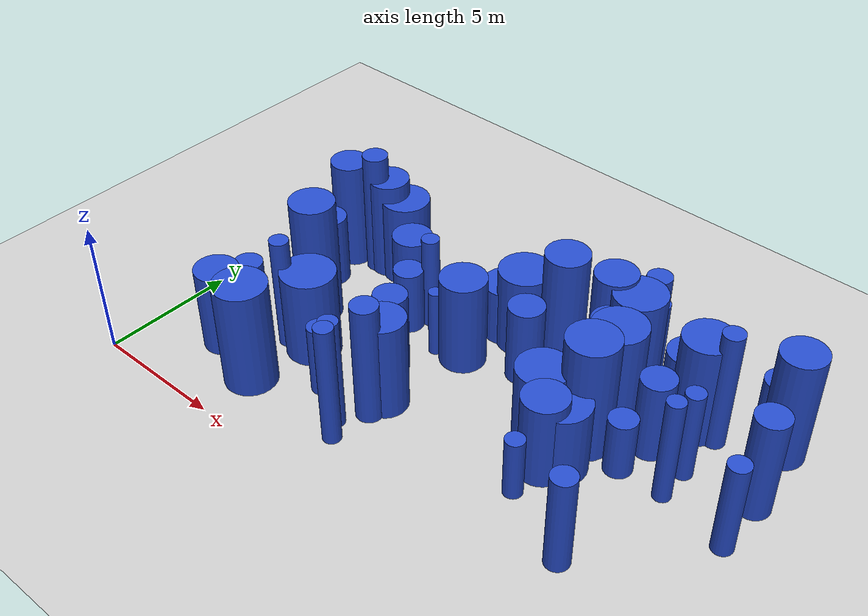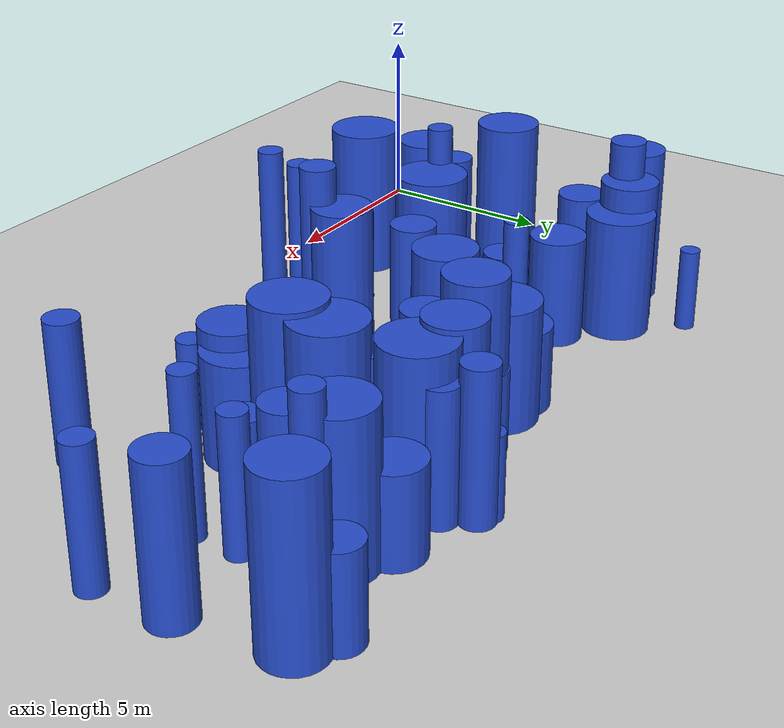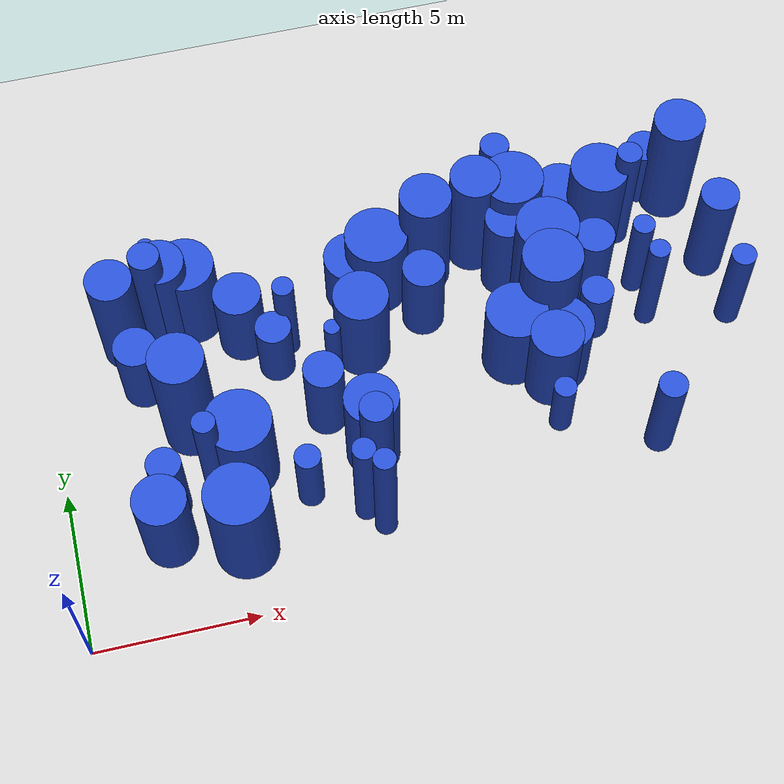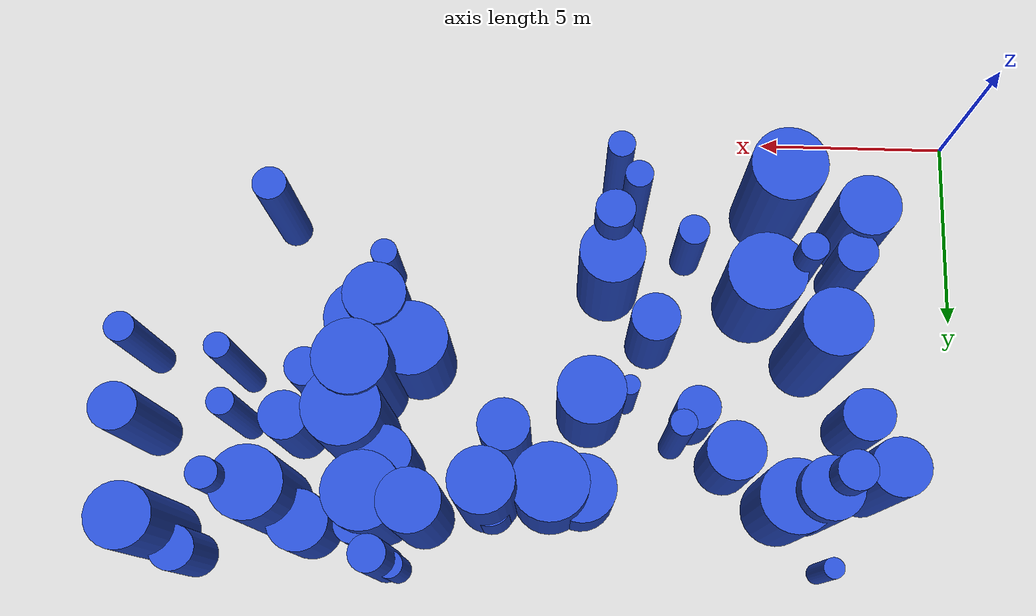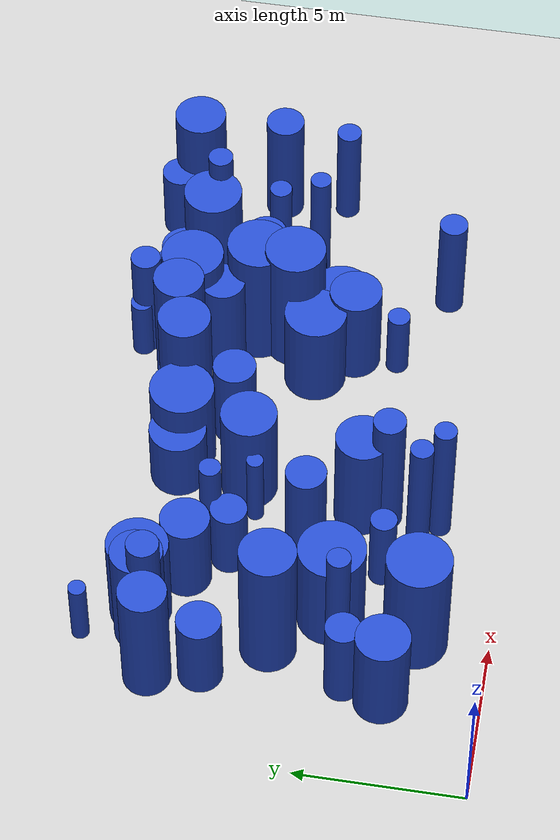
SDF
<sdf version="1.6">
 <world name="default">
  <model name="ground_plane">
   <static>1</static>
   <link name="link">
    <collision name="collision">
     <geometry><plane><normal>0 0 1</normal><size>100 100</size></plane></geometry>
     <surface><friction><ode><mu>100</mu><mu2>50</mu2></ode></friction></surface>
    </collision>
    <visual name="visual">
     <cast_shadows>0</cast_shadows>
     <geometry><plane><normal>0 0 1</normal><size>100 100</size></plane></geometry>
     <material>
      <script><uri>file://media/materials/scripts/gazebo.material</uri><name>Gazebo/Grey</name></script>
     </material>
    </visual>
   </link>
  </model>
  <model name="6">
   <static>0</static>
   <link name="link">
    <inertial>
     <mass>2</mass>
     <inertia><ixx>1.16849</ixx><ixy>0</ixy><ixz>0</ixz><iyy>1.16849</iyy><iyz>0</iyz><izz>0.30328</izz></inertia>
    </inertial>
    <collision name="collision">
     <geometry><cylinder><length>2.47004</length><radius>0.550708</radius></cylinder></geometry>
     <surface><contact><collide_without_contact>1</collide_without_contact></contact></surface>
    </collision>
    <visual name="visual">
     <geometry><cylinder><length>2.47004</length><radius>0.550708</radius></cylinder></geometry>
     <material>
      <script><uri>file://media/materials/scripts/gazebo.material</uri><name>Gazebo/Blue</name></script>
     </material>
    </visual>
    <gravity>0</gravity>
   </link>
   <pose>7.0052 7.97036 1.23502 0 -0 0</pose>
  </model>
  <model name="28">
   <static>0</static>
   <link name="link">
    <inertial>
     <mass>2</mass>
     <inertia><ixx>1.94852</ixx><ixy>0</ixy><ixz>0</ixz><iyy>1.94852</iyy><iyz>0</iyz><izz>0.176047</izz></inertia>
    </inertial>
    <collision name="collision">
     <geometry><cylinder><length>3.3411</length><radius>0.41958</radius></cylinder></geometry>
     <surface><contact><collide_without_contact>1</collide_without_contact></contact></surface>
    </collision>
    <visual name="visual">
     <geometry><cylinder><length>3.3411</length><radius>0.41958</radius></cylinder></geometry>
     <material>
      <script><uri>file://media/materials/scripts/gazebo.material</uri><name>Gazebo/Blue</name></script>
     </material>
    </visual>
    <gravity>0</gravity>
   </link>
   <pose>14.7068 10.6265 1.67055 0 -0 0</pose>
  </model>
  <model name="40">
   <static>0</static>
   <link name="link">
    <inertial>
     <mass>2</mass>
     <inertia><ixx>2.63983</ixx><ixy>0</ixy><ixz>0</ixz><iyy>2.63983</iyy><iyz>0</iyz><izz>0.666975</izz></inertia>
    </inertial>
    <collision name="collision">
     <geometry><cylinder><length>3.71996</length><radius>0.816686</radius></cylinder></geometry>
     <surface><contact><collide_without_contact>1</collide_without_contact></contact></surface>
    </collision>
    <visual name="visual">
     <geometry><cylinder><length>3.71996</length><radius>0.816686</radius></cylinder></geometry>
     <material>
      <script><uri>file://media/materials/scripts/gazebo.material</uri><name>Gazebo/Blue</name></script>
     </material>
    </visual>
    <gravity>0</gravity>
   </link>
   <pose>9.25913 4.38919 1.85998 0 -0 0</pose>
  </model>
  <model name="67">
   <static>0</static>
   <link name="link">
    <inertial>
     <mass>2</mass>
     <inertia><ixx>2.79637</ixx><ixy>0</ixy><ixz>0</ixz><iyy>2.79637</iyy><iyz>0</iyz><izz>0.102595</izz></inertia>
    </inertial>
    <collision name="collision">
     <geometry><cylinder><length>4.05837</length><radius>0.320305</radius></cylinder></geometry>
     <surface><contact><collide_without_contact>1</collide_without_contact></contact></surface>
    </collision>
    <visual name="visual">
     <geometry><cylinder><length>4.05837</length><radius>0.320305</radius></cylinder></geometry>
     <material>
      <script><uri>file://media/materials/scripts/gazebo.material</uri><name>Gazebo/Blue</name></script>
     </material>
    </visual>
    <gravity>0</gravity>
   </link>
   <pose>18.6336 7.11868 2.02919 0 -0 0</pose>
  </model>
  <model name="76">
   <static>0</static>
   <link name="link">
    <inertial>
     <mass>2</mass>
     <inertia><ixx>2.26784</ixx><ixy>0</ixy><ixz>0</ixz><iyy>2.26784</iyy><iyz>0</iyz><izz>0.465328</izz></inertia>
    </inertial>
    <collision name="collision">
     <geometry><cylinder><length>3.49443</length><radius>0.68215</radius></cylinder></geometry>
     <surface><contact><collide_without_contact>1</collide_without_contact></contact></surface>
    </collision>
    <visual name="visual">
     <geometry><cylinder><length>3.49443</length><radius>0.68215</radius></cylinder></geometry>
     <material>
      <script><uri>file://media/materials/scripts/gazebo.material</uri><name>Gazebo/Blue</name></script>
     </material>
    </visual>
    <gravity>0</gravity>
   </link>
   <pose>14.5999 9.48681 1.74722 0 -0 0</pose>
  </model>
  <model name="80">
   <static>0</static>
   <link name="link">
    <inertial>
     <mass>2</mass>
     <inertia><ixx>3.71121</ixx><ixy>0</ixy><ixz>0</ixz><iyy>3.71121</iyy><iyz>0</iyz><izz>0.629149</izz></inertia>
    </inertial>
    <collision name="collision">
     <geometry><cylinder><length>4.5144</length><radius>0.793189</radius></cylinder></geometry>
     <surface><contact><collide_without_contact>1</collide_without_contact></contact></surface>
    </collision>
    <visual name="visual">
     <geometry><cylinder><length>4.5144</length><radius>0.793189</radius></cylinder></geometry>
     <material>
      <script><uri>file://media/materials/scripts/gazebo.material</uri><name>Gazebo/Blue</name></script>
     </material>
    </visual>
    <gravity>0</gravity>
   </link>
   <pose>12.2104 10.1975 2.2572 0 -0 0</pose>
  </model>
  <model name="81">
   <static>0</static>
   <link name="link">
    <inertial>
     <mass>2</mass>
     <inertia><ixx>2.09463</ixx><ixy>0</ixy><ixz>0</ixz><iyy>2.09463</iyy><iyz>0</iyz><izz>0.116243</izz></inertia>
    </inertial>
    <collision name="collision">
     <geometry><cylinder><length>3.49558</length><radius>0.340944</radius></cylinder></geometry>
     <surface><contact><collide_without_contact>1</collide_without_contact></contact></surface>
    </collision>
    <visual name="visual">
     <geometry><cylinder><length>3.49558</length><radius>0.340944</radius></cylinder></geometry>
     <material>
      <script><uri>file://media/materials/scripts/gazebo.material</uri><name>Gazebo/Blue</name></script>
     </material>
    </visual>
    <gravity>0</gravity>
   </link>
   <pose>18.5804 8.35897 1.74779 0 -0 0</pose>
  </model>
  <model name="98">
   <static>0</static>
   <link name="link">
    <inertial>
     <mass>2</mass>
     <inertia><ixx>3.32763</ixx><ixy>0</ixy><ixz>0</ixz><iyy>3.32763</iyy><iyz>0</iyz><izz>0.121645</izz></inertia>
    </inertial>
    <collision name="collision">
     <geometry><cylinder><length>4.42729</length><radius>0.348777</radius></cylinder></geometry>
     <surface><contact><collide_without_contact>1</collide_without_contact></contact></surface>
    </collision>
    <visual name="visual">
     <geometry><cylinder><length>4.42729</length><radius>0.348777</radius></cylinder></geometry>
     <material>
      <script><uri>file://media/materials/scripts/gazebo.material</uri><name>Gazebo/Blue</name></script>
     </material>
    </visual>
    <gravity>0</gravity>
   </link>
   <pose>4.45743 4.36938 2.21364 0 -0 0</pose>
  </model>
  <model name="110">
   <static>0</static>
   <link name="link">
    <inertial>
     <mass>2</mass>
     <inertia><ixx>3.46082</ixx><ixy>0</ixy><ixz>0</ixz><iyy>3.46082</iyy><iyz>0</iyz><izz>0.623462</izz></inertia>
    </inertial>
    <collision name="collision">
     <geometry><cylinder><length>4.34679</length><radius>0.789596</radius></cylinder></geometry>
     <surface><contact><collide_without_contact>1</collide_without_contact></contact></surface>
    </collision>
    <visual name="visual">
     <geometry><cylinder><length>4.34679</length><radius>0.789596</radius></cylinder></geometry>
     <material>
      <script><uri>file://media/materials/scripts/gazebo.material</uri><name>Gazebo/Blue</name></script>
     </material>
    </visual>
    <gravity>0</gravity>
   </link>
   <pose>20.4546 11.2162 2.17339 0 -0 0</pose>
  </model>
  <model name="122">
   <static>0</static>
   <link name="link">
    <inertial>
     <mass>2</mass>
     <inertia><ixx>3.02054</ixx><ixy>0</ixy><ixz>0</ixz><iyy>3.02054</iyy><iyz>0</iyz><izz>0.797746</izz></inertia>
    </inertial>
    <collision name="collision">
     <geometry><cylinder><length>3.9661</length><radius>0.893166</radius></cylinder></geometry>
     <surface><contact><collide_without_contact>1</collide_without_contact></contact></surface>
    </collision>
    <visual name="visual">
     <geometry><cylinder><length>3.9661</length><radius>0.893166</radius></cylinder></geometry>
     <material>
      <script><uri>file://media/materials/scripts/gazebo.material</uri><name>Gazebo/Blue</name></script>
     </material>
    </visual>
    <gravity>0</gravity>
   </link>
   <pose>17.7023 10.3334 1.98305 0 -0 0</pose>
  </model>
  <model name="139">
   <static>0</static>
   <link name="link">
    <inertial>
     <mass>2</mass>
     <inertia><ixx>2.7254</ixx><ixy>0</ixy><ixz>0</ixz><iyy>2.7254</iyy><iyz>0</iyz><izz>0.347029</izz></inertia>
    </inertial>
    <collision name="collision">
     <geometry><cylinder><length>3.91297</length><radius>0.589092</radius></cylinder></geometry>
     <surface><contact><collide_without_contact>1</collide_without_contact></contact></surface>
    </collision>
    <visual name="visual">
     <geometry><cylinder><length>3.91297</length><radius>0.589092</radius></cylinder></geometry>
     <material>
      <script><uri>file://media/materials/scripts/gazebo.material</uri><name>Gazebo/Blue</name></script>
     </material>
    </visual>
    <gravity>0</gravity>
   </link>
   <pose>21.0016 8.62317 1.95648 0 -0 0</pose>
  </model>
  <model name="142">
   <static>0</static>
   <link name="link">
    <inertial>
     <mass>2</mass>
     <inertia><ixx>2.45958</ixx><ixy>0</ixy><ixz>0</ixz><iyy>2.45958</iyy><iyz>0</iyz><izz>0.99276</izz></inertia>
    </inertial>
    <collision name="collision">
     <geometry><cylinder><length>3.43208</length><radius>0.996374</radius></cylinder></geometry>
     <surface><contact><collide_without_contact>1</collide_without_contact></contact></surface>
    </collision>
    <visual name="visual">
     <geometry><cylinder><length>3.43208</length><radius>0.996374</radius></cylinder></geometry>
     <material>
      <script><uri>file://media/materials/scripts/gazebo.material</uri><name>Gazebo/Blue</name></script>
     </material>
    </visual>
    <gravity>0</gravity>
   </link>
   <pose>5.41598 4.70127 1.71604 0 -0 0</pose>
  </model>
  <model name="156">
   <static>0</static>
   <link name="link">
    <inertial>
     <mass>2</mass>
     <inertia><ixx>2.3637</ixx><ixy>0</ixy><ixz>0</ixz><iyy>2.3637</iyy><iyz>0</iyz><izz>0.186598</izz></inertia>
    </inertial>
    <collision name="collision">
     <geometry><cylinder><length>3.69085</length><radius>0.431969</radius></cylinder></geometry>
     <surface><contact><collide_without_contact>1</collide_without_contact></contact></surface>
    </collision>
    <visual name="visual">
     <geometry><cylinder><length>3.69085</length><radius>0.431969</radius></cylinder></geometry>
     <material>
      <script><uri>file://media/materials/scripts/gazebo.material</uri><name>Gazebo/Blue</name></script>
     </material>
    </visual>
    <gravity>0</gravity>
   </link>
   <pose>17.8167 2.86989 1.84543 0 -0 0</pose>
  </model>
  <model name="163">
   <static>0</static>
   <link name="link">
    <inertial>
     <mass>2</mass>
     <inertia><ixx>3.32373</ixx><ixy>0</ixy><ixz>0</ixz><iyy>3.32373</iyy><iyz>0</iyz><izz>0.890012</izz></inertia>
    </inertial>
    <collision name="collision">
     <geometry><cylinder><length>4.156</length><radius>0.943405</radius></cylinder></geometry>
     <surface><contact><collide_without_contact>1</collide_without_contact></contact></surface>
    </collision>
    <visual name="visual">
     <geometry><cylinder><length>4.156</length><radius>0.943405</radius></cylinder></geometry>
     <material>
      <script><uri>file://media/materials/scripts/gazebo.material</uri><name>Gazebo/Blue</name></script>
     </material>
    </visual>
    <gravity>0</gravity>
   </link>
   <pose>14.9851 10.467 2.078 0 -0 0</pose>
  </model>
  <model name="192">
   <static>0</static>
   <link name="link">
    <inertial>
     <mass>2</mass>
     <inertia><ixx>1.66723</ixx><ixy>0</ixy><ixz>0</ixz><iyy>1.66723</iyy><iyz>0</iyz><izz>0.270355</izz></inertia>
    </inertial>
    <collision name="collision">
     <geometry><cylinder><length>3.03188</length><radius>0.519957</radius></cylinder></geometry>
     <surface><contact><collide_without_contact>1</collide_without_contact></contact></surface>
    </collision>
    <visual name="visual">
     <geometry><cylinder><length>3.03188</length><radius>0.519957</radius></cylinder></geometry>
     <material>
      <script><uri>file://media/materials/scripts/gazebo.material</uri><name>Gazebo/Blue</name></script>
     </material>
    </visual>
    <gravity>0</gravity>
   </link>
   <pose>3.09771 4.0201 1.51594 0 -0 0</pose>
  </model>
  <model name="226">
   <static>0</static>
   <link name="link">
    <inertial>
     <mass>2</mass>
     <inertia><ixx>2.07399</ixx><ixy>0</ixy><ixz>0</ixz><iyy>2.07399</iyy><iyz>0</iyz><izz>0.204974</izz></inertia>
    </inertial>
    <collision name="collision">
     <geometry><cylinder><length>3.43933</length><radius>0.45274</radius></cylinder></geometry>
     <surface><contact><collide_without_contact>1</collide_without_contact></contact></surface>
    </collision>
    <visual name="visual">
     <geometry><cylinder><length>3.43933</length><radius>0.45274</radius></cylinder></geometry>
     <material>
      <script><uri>file://media/materials/scripts/gazebo.material</uri><name>Gazebo/Blue</name></script>
     </material>
    </visual>
    <gravity>0</gravity>
   </link>
   <pose>15.2359 11.1873 1.71967 0 -0 0</pose>
  </model>
  <model name="228">
   <static>0</static>
   <link name="link">
    <inertial>
     <mass>2</mass>
     <inertia><ixx>3.586</ixx><ixy>0</ixy><ixz>0</ixz><iyy>3.586</iyy><iyz>0</iyz><izz>0.906803</izz></inertia>
    </inertial>
    <collision name="collision">
     <geometry><cylinder><length>4.33539</length><radius>0.952262</radius></cylinder></geometry>
     <surface><contact><collide_without_contact>1</collide_without_contact></contact></surface>
    </collision>
    <visual name="visual">
     <geometry><cylinder><length>4.33539</length><radius>0.952262</radius></cylinder></geometry>
     <material>
      <script><uri>file://media/materials/scripts/gazebo.material</uri><name>Gazebo/Blue</name></script>
     </material>
    </visual>
    <gravity>0</gravity>
   </link>
   <pose>15.5517 8.53745 2.16769 0 -0 0</pose>
  </model>
  <model name="233">
   <static>0</static>
   <link name="link">
    <inertial>
     <mass>2</mass>
     <inertia><ixx>3.66033</ixx><ixy>0</ixy><ixz>0</ixz><iyy>3.66033</iyy><iyz>0</iyz><izz>0.144052</izz></inertia>
    </inertial>
    <collision name="collision">
     <geometry><cylinder><length>4.64003</length><radius>0.379542</radius></cylinder></geometry>
     <surface><contact><collide_without_contact>1</collide_without_contact></contact></surface>
    </collision>
    <visual name="visual">
     <geometry><cylinder><length>4.64003</length><radius>0.379542</radius></cylinder></geometry>
     <material>
      <script><uri>file://media/materials/scripts/gazebo.material</uri><name>Gazebo/Blue</name></script>
     </material>
    </visual>
    <gravity>0</gravity>
   </link>
   <pose>18.5501 10.2334 2.32001 0 -0 0</pose>
  </model>
  <model name="244">
   <static>0</static>
   <link name="link">
    <inertial>
     <mass>2</mass>
     <inertia><ixx>2.89546</ixx><ixy>0</ixy><ixz>0</ixz><iyy>2.89546</iyy><iyz>0</iyz><izz>0.586213</izz></inertia>
    </inertial>
    <collision name="collision">
     <geometry><cylinder><length>3.95147</length><radius>0.765645</radius></cylinder></geometry>
     <surface><contact><collide_without_contact>1</collide_without_contact></contact></surface>
    </collision>
    <visual name="visual">
     <geometry><cylinder><length>3.95147</length><radius>0.765645</radius></cylinder></geometry>
     <material>
      <script><uri>file://media/materials/scripts/gazebo.material</uri><name>Gazebo/Blue</name></script>
     </material>
    </visual>
    <gravity>0</gravity>
   </link>
   <pose>4.05756 10.069 1.97574 0 -0 0</pose>
  </model>
  <model name="263">
   <static>0</static>
   <link name="link">
    <inertial>
     <mass>2</mass>
     <inertia><ixx>0.907717</ixx><ixy>0</ixy><ixz>0</ixz><iyy>0.907717</iyy><iyz>0</iyz><izz>0.3185</izz></inertia>
    </inertial>
    <collision name="collision">
     <geometry><cylinder><length>2.11915</length><radius>0.564358</radius></cylinder></geometry>
     <surface><contact><collide_without_contact>1</collide_without_contact></contact></surface>
    </collision>
    <visual name="visual">
     <geometry><cylinder><length>2.11915</length><radius>0.564358</radius></cylinder></geometry>
     <material>
      <script><uri>file://media/materials/scripts/gazebo.material</uri><name>Gazebo/Blue</name></script>
     </material>
    </visual>
    <gravity>0</gravity>
   </link>
   <pose>12.1133 10.4548 1.05958 0 -0 0</pose>
  </model>
  <model name="271">
   <static>0</static>
   <link name="link">
    <inertial>
     <mass>2</mass>
     <inertia><ixx>2.10472</ixx><ixy>0</ixy><ixz>0</ixz><iyy>2.10472</iyy><iyz>0</iyz><izz>0.064285</izz></inertia>
    </inertial>
    <collision name="collision">
     <geometry><cylinder><length>3.5264</length><radius>0.253545</radius></cylinder></geometry>
     <surface><contact><collide_without_contact>1</collide_without_contact></contact></surface>
    </collision>
    <visual name="visual">
     <geometry><cylinder><length>3.5264</length><radius>0.253545</radius></cylinder></geometry>
     <material>
      <script><uri>file://media/materials/scripts/gazebo.material</uri><name>Gazebo/Blue</name></script>
     </material>
    </visual>
    <gravity>0</gravity>
   </link>
   <pose>15.2107 10.6594 1.7632 0 -0 0</pose>
  </model>
  <model name="276">
   <static>0</static>
   <link name="link">
    <inertial>
     <mass>2</mass>
     <inertia><ixx>2.0382</ixx><ixy>0</ixy><ixz>0</ixz><iyy>2.0382</iyy><iyz>0</iyz><izz>0.891258</izz></inertia>
    </inertial>
    <collision name="collision">
     <geometry><cylinder><length>3.09118</length><radius>0.944065</radius></cylinder></geometry>
     <surface><contact><collide_without_contact>1</collide_without_contact></contact></surface>
    </collision>
    <visual name="visual">
     <geometry><cylinder><length>3.09118</length><radius>0.944065</radius></cylinder></geometry>
     <material>
      <script><uri>file://media/materials/scripts/gazebo.material</uri><name>Gazebo/Blue</name></script>
     </material>
    </visual>
    <gravity>0</gravity>
   </link>
   <pose>14.1727 6.56712 1.54559 0 -0 0</pose>
  </model>
  <model name="284">
   <static>0</static>
   <link name="link">
    <inertial>
     <mass>2</mass>
     <inertia><ixx>2.1319</ixx><ixy>0</ixy><ixz>0</ixz><iyy>2.1319</iyy><iyz>0</iyz><izz>0.93525</izz></inertia>
    </inertial>
    <collision name="collision">
     <geometry><cylinder><length>3.16001</length><radius>0.967083</radius></cylinder></geometry>
     <surface><contact><collide_without_contact>1</collide_without_contact></contact></surface>
    </collision>
    <visual name="visual">
     <geometry><cylinder><length>3.16001</length><radius>0.967083</radius></cylinder></geometry>
     <material>
      <script><uri>file://media/materials/scripts/gazebo.material</uri><name>Gazebo/Blue</name></script>
     </material>
    </visual>
    <gravity>0</gravity>
   </link>
   <pose>10.6339 10.0102 1.58 0 -0 0</pose>
  </model>
  <model name="292">
   <static>0</static>
   <link name="link">
    <inertial>
     <mass>2</mass>
     <inertia><ixx>1.13013</ixx><ixy>0</ixy><ixz>0</ixz><iyy>1.13013</iyy><iyz>0</iyz><izz>0.317248</izz></inertia>
    </inertial>
    <collision name="collision">
     <geometry><cylinder><length>2.41434</length><radius>0.563248</radius></cylinder></geometry>
     <surface><contact><collide_without_contact>1</collide_without_contact></contact></surface>
    </collision>
    <visual name="visual">
     <geometry><cylinder><length>2.41434</length><radius>0.563248</radius></cylinder></geometry>
     <material>
      <script><uri>file://media/materials/scripts/gazebo.material</uri><name>Gazebo/Blue</name></script>
     </material>
    </visual>
    <gravity>0</gravity>
   </link>
   <pose>19.723 11.7644 1.20717 0 -0 0</pose>
  </model>
  <model name="293">
   <static>0</static>
   <link name="link">
    <inertial>
     <mass>2</mass>
     <inertia><ixx>3.19014</ixx><ixy>0</ixy><ixz>0</ixz><iyy>3.19014</iyy><iyz>0</iyz><izz>0.120581</izz></inertia>
    </inertial>
    <collision name="collision">
     <geometry><cylinder><length>4.33348</length><radius>0.347248</radius></cylinder></geometry>
     <surface><contact><collide_without_contact>1</collide_without_contact></contact></surface>
    </collision>
    <visual name="visual">
     <geometry><cylinder><length>4.33348</length><radius>0.347248</radius></cylinder></geometry>
     <material>
      <script><uri>file://media/materials/scripts/gazebo.material</uri><name>Gazebo/Blue</name></script>
     </material>
    </visual>
    <gravity>0</gravity>
   </link>
   <pose>8.66752 2.60543 2.16674 0 -0 0</pose>
  </model>
  <model name="298">
   <static>0</static>
   <link name="link">
    <inertial>
     <mass>2</mass>
     <inertia><ixx>2.66262</ixx><ixy>0</ixy><ixz>0</ixz><iyy>2.66262</iyy><iyz>0</iyz><izz>0.202334</izz></inertia>
    </inertial>
    <collision name="collision">
     <geometry><cylinder><length>3.9203</length><radius>0.449815</radius></cylinder></geometry>
     <surface><contact><collide_without_contact>1</collide_without_contact></contact></surface>
    </collision>
    <visual name="visual">
     <geometry><cylinder><length>3.9203</length><radius>0.449815</radius></cylinder></geometry>
     <material>
      <script><uri>file://media/materials/scripts/gazebo.material</uri><name>Gazebo/Blue</name></script>
     </material>
    </visual>
    <gravity>0</gravity>
   </link>
   <pose>14.7882 11.8781 1.96015 0 -0 0</pose>
  </model>
  <model name="308">
   <static>0</static>
   <link name="link">
    <inertial>
     <mass>2</mass>
     <inertia><ixx>2.47748</ixx><ixy>0</ixy><ixz>0</ixz><iyy>2.47748</iyy><iyz>0</iyz><izz>0.710969</izz></inertia>
    </inertial>
    <collision name="collision">
     <geometry><cylinder><length>3.56819</length><radius>0.84319</radius></cylinder></geometry>
     <surface><contact><collide_without_contact>1</collide_without_contact></contact></surface>
    </collision>
    <visual name="visual">
     <geometry><cylinder><length>3.56819</length><radius>0.84319</radius></cylinder></geometry>
     <material>
      <script><uri>file://media/materials/scripts/gazebo.material</uri><name>Gazebo/Blue</name></script>
     </material>
    </visual>
    <gravity>0</gravity>
   </link>
   <pose>9.69309 7.83304 1.78409 0 -0 0</pose>
  </model>
  <model name="310">
   <static>0</static>
   <link name="link">
    <inertial>
     <mass>2</mass>
     <inertia><ixx>1.3329</ixx><ixy>0</ixy><ixz>0</ixz><iyy>1.3329</iyy><iyz>0</iyz><izz>0.156162</izz></inertia>
    </inertial>
    <collision name="collision">
     <geometry><cylinder><length>2.74389</length><radius>0.395173</radius></cylinder></geometry>
     <surface><contact><collide_without_contact>1</collide_without_contact></contact></surface>
    </collision>
    <visual name="visual">
     <geometry><cylinder><length>2.74389</length><radius>0.395173</radius></cylinder></geometry>
     <material>
      <script><uri>file://media/materials/scripts/gazebo.material</uri><name>Gazebo/Blue</name></script>
     </material>
    </visual>
    <gravity>0</gravity>
   </link>
   <pose>7.1592 3.45389 1.37194 0 -0 0</pose>
  </model>
  <model name="313">
   <static>0</static>
   <link name="link">
    <inertial>
     <mass>2</mass>
     <inertia><ixx>1.68863</ixx><ixy>0</ixy><ixz>0</ixz><iyy>1.68863</iyy><iyz>0</iyz><izz>0.539098</izz></inertia>
    </inertial>
    <collision name="collision">
     <geometry><cylinder><length>2.91796</length><radius>0.734233</radius></cylinder></geometry>
     <surface><contact><collide_without_contact>1</collide_without_contact></contact></surface>
    </collision>
    <visual name="visual">
     <geometry><cylinder><length>2.91796</length><radius>0.734233</radius></cylinder></geometry>
     <material>
      <script><uri>file://media/materials/scripts/gazebo.material</uri><name>Gazebo/Blue</name></script>
     </material>
    </visual>
    <gravity>0</gravity>
   </link>
   <pose>6.14597 9.09051 1.45898 0 -0 0</pose>
  </model>
  <model name="317">
   <static>0</static>
   <link name="link">
    <inertial>
     <mass>2</mass>
     <inertia><ixx>3.7708</ixx><ixy>0</ixy><ixz>0</ixz><iyy>3.7708</iyy><iyz>0</iyz><izz>0.112661</izz></inertia>
    </inertial>
    <collision name="collision">
     <geometry><cylinder><length>4.72089</length><radius>0.335649</radius></cylinder></geometry>
     <surface><contact><collide_without_contact>1</collide_without_contact></contact></surface>
    </collision>
    <visual name="visual">
     <geometry><cylinder><length>4.72089</length><radius>0.335649</radius></cylinder></geometry>
     <material>
      <script><uri>file://media/materials/scripts/gazebo.material</uri><name>Gazebo/Blue</name></script>
     </material>
    </visual>
    <gravity>0</gravity>
   </link>
   <pose>9.12663 2.00216 2.36045 0 -0 0</pose>
  </model>
  <model name="327">
   <static>0</static>
   <link name="link">
    <inertial>
     <mass>2</mass>
     <inertia><ixx>3.75409</ixx><ixy>0</ixy><ixz>0</ixz><iyy>3.75409</iyy><iyz>0</iyz><izz>0.234612</izz></inertia>
    </inertial>
    <collision name="collision">
     <geometry><cylinder><length>4.67126</length><radius>0.484368</radius></cylinder></geometry>
     <surface><contact><collide_without_contact>1</collide_without_contact></contact></surface>
    </collision>
    <visual name="visual">
     <geometry><cylinder><length>4.67126</length><radius>0.484368</radius></cylinder></geometry>
     <material>
      <script><uri>file://media/materials/scripts/gazebo.material</uri><name>Gazebo/Blue</name></script>
     </material>
    </visual>
    <gravity>0</gravity>
   </link>
   <pose>9.24751 3.63389 2.33563 0 -0 0</pose>
  </model>
  <model name="332">
   <static>0</static>
   <link name="link">
    <inertial>
     <mass>2</mass>
     <inertia>
      <ixx>0.935174</ixx>
      <ixy>0</ixy>
      <ixz>0</ixz>
      <iyy>0.935174</iyy>
      <iyz>0</iyz>
      <izz>0.252871</izz>
     </inertia>
    </inertial>
    <collision name="collision">
     <geometry><cylinder><length>2.20282</length><radius>0.502863</radius></cylinder></geometry>
     <surface><contact><collide_without_contact>1</collide_without_contact></contact></surface>
    </collision>
    <visual name="visual">
     <geometry><cylinder><length>2.20282</length><radius>0.502863</radius></cylinder></geometry>
     <material>
      <script><uri>file://media/materials/scripts/gazebo.material</uri><name>Gazebo/Blue</name></script>
     </material>
    </visual>
    <gravity>0</gravity>
   </link>
   <pose>16.9084 7.16145 1.10141 0 -0 0</pose>
  </model>
  <model name="339">
   <static>0</static>
   <link name="link">
    <inertial>
     <mass>2</mass>
     <inertia><ixx>4.12566</ixx><ixy>0</ixy><ixz>0</ixz><iyy>4.12566</iyy><iyz>0</iyz><izz>0.223047</izz></inertia>
    </inertial>
    <collision name="collision">
     <geometry><cylinder><length>4.90763</length><radius>0.472279</radius></cylinder></geometry>
     <surface><contact><collide_without_contact>1</collide_without_contact></contact></surface>
    </collision>
    <visual name="visual">
     <geometry><cylinder><length>4.90763</length><radius>0.472279</radius></cylinder></geometry>
     <material>
      <script><uri>file://media/materials/scripts/gazebo.material</uri><name>Gazebo/Blue</name></script>
     </material>
    </visual>
    <gravity>0</gravity>
   </link>
   <pose>3.69361 9.78213 2.45381 0 -0 0</pose>
  </model>
  <model name="343">
   <static>0</static>
   <link name="link">
    <inertial>
     <mass>2</mass>
     <inertia><ixx>1.87121</ixx><ixy>0</ixy><ixz>0</ixz><iyy>1.87121</iyy><iyz>0</iyz><izz>0.373129</izz></inertia>
    </inertial>
    <collision name="collision">
     <geometry><cylinder><length>3.17929</length><radius>0.610843</radius></cylinder></geometry>
     <surface><contact><collide_without_contact>1</collide_without_contact></contact></surface>
    </collision>
    <visual name="visual">
     <geometry><cylinder><length>3.17929</length><radius>0.610843</radius></cylinder></geometry>
     <material>
      <script><uri>file://media/materials/scripts/gazebo.material</uri><name>Gazebo/Blue</name></script>
     </material>
    </visual>
    <gravity>0</gravity>
   </link>
   <pose>8.1432 5.88195 1.58965 0 -0 0</pose>
  </model>
  <model name="355">
   <static>0</static>
   <link name="link">
    <inertial>
     <mass>2</mass>
     <inertia><ixx>1.75153</ixx><ixy>0</ixy><ixz>0</ixz><iyy>1.75153</iyy><iyz>0</iyz><izz>0.916445</izz></inertia>
    </inertial>
    <collision name="collision">
     <geometry><cylinder><length>2.78565</length><radius>0.957311</radius></cylinder></geometry>
     <surface><contact><collide_without_contact>1</collide_without_contact></contact></surface>
    </collision>
    <visual name="visual">
     <geometry><cylinder><length>2.78565</length><radius>0.957311</radius></cylinder></geometry>
     <material>
      <script><uri>file://media/materials/scripts/gazebo.material</uri><name>Gazebo/Blue</name></script>
     </material>
    </visual>
    <gravity>0</gravity>
   </link>
   <pose>15.4415 5.98343 1.39283 0 -0 0</pose>
  </model>
  <model name="359">
   <static>0</static>
   <link name="link">
    <inertial>
     <mass>2</mass>
     <inertia><ixx>1.73351</ixx><ixy>0</ixy><ixz>0</ixz><iyy>1.73351</iyy><iyz>0</iyz><izz>0.426729</izz></inertia>
    </inertial>
    <collision name="collision">
     <geometry><cylinder><length>3.02008</length><radius>0.653245</radius></cylinder></geometry>
     <surface><contact><collide_without_contact>1</collide_without_contact></contact></surface>
    </collision>
    <visual name="visual">
     <geometry><cylinder><length>3.02008</length><radius>0.653245</radius></cylinder></geometry>
     <material>
      <script><uri>file://media/materials/scripts/gazebo.material</uri><name>Gazebo/Blue</name></script>
     </material>
    </visual>
    <gravity>0</gravity>
   </link>
   <pose>11.8036 8.63533 1.51004 0 -0 0</pose>
  </model>
  <model name="365">
   <static>0</static>
   <link name="link">
    <inertial>
     <mass>2</mass>
     <inertia>
      <ixx>0.961507</ixx>
      <ixy>0</ixy>
      <ixz>0</ixz>
      <iyy>0.961507</iyy>
      <iyz>0</iyz>
      <izz>0.117633</izz>
     </inertia>
    </inertial>
    <collision name="collision">
     <geometry><cylinder><length>2.32726</length><radius>0.342977</radius></cylinder></geometry>
     <surface><contact><collide_without_contact>1</collide_without_contact></contact></surface>
    </collision>
    <visual name="visual">
     <geometry><cylinder><length>2.32726</length><radius>0.342977</radius></cylinder></geometry>
     <material>
      <script><uri>file://media/materials/scripts/gazebo.material</uri><name>Gazebo/Blue</name></script>
     </material>
    </visual>
    <gravity>0</gravity>
   </link>
   <pose>15.0602 4.1328 1.16363 0 -0 0</pose>
  </model>
  <model name="370">
   <static>0</static>
   <link name="link">
    <inertial>
     <mass>2</mass>
     <inertia><ixx>1.75541</ixx><ixy>0</ixy><ixz>0</ixz><iyy>1.75541</iyy><iyz>0</iyz><izz>0.372277</izz></inertia>
    </inertial>
    <collision name="collision">
     <geometry><cylinder><length>3.06849</length><radius>0.610145</radius></cylinder></geometry>
     <surface><contact><collide_without_contact>1</collide_without_contact></contact></surface>
    </collision>
    <visual name="visual">
     <geometry><cylinder><length>3.06849</length><radius>0.610145</radius></cylinder></geometry>
     <material>
      <script><uri>file://media/materials/scripts/gazebo.material</uri><name>Gazebo/Blue</name></script>
     </material>
    </visual>
    <gravity>0</gravity>
   </link>
   <pose>17.1482 8.57288 1.53424 0 -0 0</pose>
  </model>
  <model name="374">
   <static>0</static>
   <link name="link">
    <inertial>
     <mass>2</mass>
     <inertia><ixx>2.31438</ixx><ixy>0</ixy><ixz>0</ixz><iyy>2.31438</iyy><iyz>0</iyz><izz>0.106819</izz></inertia>
    </inertial>
    <collision name="collision">
     <geometry><cylinder><length>3.68318</length><radius>0.326832</radius></cylinder></geometry>
     <surface><contact><collide_without_contact>1</collide_without_contact></contact></surface>
    </collision>
    <visual name="visual">
     <geometry><cylinder><length>3.68318</length><radius>0.326832</radius></cylinder></geometry>
     <material>
      <script><uri>file://media/materials/scripts/gazebo.material</uri><name>Gazebo/Blue</name></script>
     </material>
    </visual>
    <gravity>0</gravity>
   </link>
   <pose>7.50087 8.58831 1.84159 0 -0 0</pose>
  </model>
  <model name="390">
   <static>0</static>
   <link name="link">
    <inertial>
     <mass>2</mass>
     <inertia><ixx>3.30202</ixx><ixy>0</ixy><ixz>0</ixz><iyy>3.30202</iyy><iyz>0</iyz><izz>0.499873</izz></inertia>
    </inertial>
    <collision name="collision">
     <geometry><cylinder><length>4.27931</length><radius>0.707017</radius></cylinder></geometry>
     <surface><contact><collide_without_contact>1</collide_without_contact></contact></surface>
    </collision>
    <visual name="visual">
     <geometry><cylinder><length>4.27931</length><radius>0.707017</radius></cylinder></geometry>
     <material>
      <script><uri>file://media/materials/scripts/gazebo.material</uri><name>Gazebo/Blue</name></script>
     </material>
    </visual>
    <gravity>0</gravity>
   </link>
   <pose>2.54028 9.5907 2.13966 0 -0 0</pose>
  </model>
  <model name="396">
   <static>0</static>
   <link name="link">
    <inertial>
     <mass>2</mass>
     <inertia>
      <ixx>0.872137</ixx>
      <ixy>0</ixy>
      <ixz>0</ixz>
      <iyy>0.872137</iyy>
      <iyz>0</iyz>
      <izz>0.0681759</izz>
     </inertia>
    </inertial>
    <collision name="collision">
     <geometry><cylinder><length>2.24239</length><radius>0.261105</radius></cylinder></geometry>
     <surface><contact><collide_without_contact>1</collide_without_contact></contact></surface>
    </collision>
    <visual name="visual">
     <geometry><cylinder><length>2.24239</length><radius>0.261105</radius></cylinder></geometry>
     <material>
      <script><uri>file://media/materials/scripts/gazebo.material</uri><name>Gazebo/Blue</name></script>
     </material>
    </visual>
    <gravity>0</gravity>
   </link>
   <pose>3.72069 11.7817 1.12119 0 -0 0</pose>
  </model>
  <model name="405">
   <static>0</static>
   <link name="link">
    <inertial>
     <mass>2</mass>
     <inertia>
      <ixx>1.19733</ixx>
      <ixy>0</ixy>
      <ixz>0</ixz>
      <iyy>1.19733</iyy>
      <iyz>0</iyz>
      <izz>0.0637175</izz>
     </inertia>
    </inertial>
    <collision name="collision">
     <geometry><cylinder><length>2.64439</length><radius>0.252423</radius></cylinder></geometry>
     <surface><contact><collide_without_contact>1</collide_without_contact></contact></surface>
    </collision>
    <visual name="visual">
     <geometry><cylinder><length>2.64439</length><radius>0.252423</radius></cylinder></geometry>
     <material>
      <script><uri>file://media/materials/scripts/gazebo.material</uri><name>Gazebo/Blue</name></script>
     </material>
    </visual>
    <gravity>0</gravity>
   </link>
   <pose>8.72223 7.49142 1.3222 0 -0 0</pose>
  </model>
  <model name="409">
   <static>0</static>
   <link name="link">
    <inertial>
     <mass>2</mass>
     <inertia><ixx>2.2447</ixx><ixy>0</ixy><ixz>0</ixz><iyy>2.2447</iyy><iyz>0</iyz><izz>0.828914</izz></inertia>
    </inertial>
    <collision name="collision">
     <geometry><cylinder><length>3.31382</length><radius>0.910447</radius></cylinder></geometry>
     <surface><contact><collide_without_contact>1</collide_without_contact></contact></surface>
    </collision>
    <visual name="visual">
     <geometry><cylinder><length>3.31382</length><radius>0.910447</radius></cylinder></geometry>
     <material>
      <script><uri>file://media/materials/scripts/gazebo.material</uri><name>Gazebo/Blue</name></script>
     </material>
    </visual>
    <gravity>0</gravity>
   </link>
   <pose>4.76716 10.2024 1.65691 0 -0 0</pose>
  </model>
  <model name="434">
   <static>0</static>
   <link name="link">
    <inertial>
     <mass>2</mass>
     <inertia>
      <ixx>0.825569</ixx>
      <ixy>0</ixy>
      <ixz>0</ixz>
      <iyy>0.825569</iyy>
      <iyz>0</iyz>
      <izz>0.115724</izz>
     </inertia>
    </inertial>
    <collision name="collision">
     <geometry><cylinder><length>2.14622</length><radius>0.340182</radius></cylinder></geometry>
     <surface><contact><collide_without_contact>1</collide_without_contact></contact></surface>
    </collision>
    <visual name="visual">
     <geometry><cylinder><length>2.14622</length><radius>0.340182</radius></cylinder></geometry>
     <material>
      <script><uri>file://media/materials/scripts/gazebo.material</uri><name>Gazebo/Blue</name></script>
     </material>
    </visual>
    <gravity>0</gravity>
   </link>
   <pose>14.4875 11.9958 1.07311 0 -0 0</pose>
  </model>
  <model name="442">
   <static>0</static>
   <link name="link">
    <inertial>
     <mass>2</mass>
     <inertia><ixx>3.75596</ixx><ixy>0</ixy><ixz>0</ixz><iyy>3.75596</iyy><iyz>0</iyz><izz>0.848715</izz></inertia>
    </inertial>
    <collision name="collision">
     <geometry><cylinder><length>4.47098</length><radius>0.921257</radius></cylinder></geometry>
     <surface><contact><collide_without_contact>1</collide_without_contact></contact></surface>
    </collision>
    <visual name="visual">
     <geometry><cylinder><length>4.47098</length><radius>0.921257</radius></cylinder></geometry>
     <material>
      <script><uri>file://media/materials/scripts/gazebo.material</uri><name>Gazebo/Blue</name></script>
     </material>
    </visual>
    <gravity>0</gravity>
   </link>
   <pose>15.3947 7.38175 2.23549 0 -0 0</pose>
  </model>
  <model name="445">
   <static>0</static>
   <link name="link">
    <inertial>
     <mass>2</mass>
     <inertia><ixx>2.02982</ixx><ixy>0</ixy><ixz>0</ixz><iyy>2.02982</iyy><iyz>0</iyz><izz>0.64287</izz></inertia>
    </inertial>
    <collision name="collision">
     <geometry><cylinder><length>3.20161</length><radius>0.801792</radius></cylinder></geometry>
     <surface><contact><collide_without_contact>1</collide_without_contact></contact></surface>
    </collision>
    <visual name="visual">
     <geometry><cylinder><length>3.20161</length><radius>0.801792</radius></cylinder></geometry>
     <material>
      <script><uri>file://media/materials/scripts/gazebo.material</uri><name>Gazebo/Blue</name></script>
     </material>
    </visual>
    <gravity>0</gravity>
   </link>
   <pose>15.1137 5.47874 1.6008 0 -0 0</pose>
  </model>
  <model name="446">
   <static>0</static>
   <link name="link">
    <inertial>
     <mass>2</mass>
     <inertia><ixx>2.21939</ixx><ixy>0</ixy><ixz>0</ixz><iyy>2.21939</iyy><iyz>0</iyz><izz>0.142971</izz></inertia>
    </inertial>
    <collision name="collision">
     <geometry><cylinder><length>3.58991</length><radius>0.378114</radius></cylinder></geometry>
     <surface><contact><collide_without_contact>1</collide_without_contact></contact></surface>
    </collision>
    <visual name="visual">
     <geometry><cylinder><length>3.58991</length><radius>0.378114</radius></cylinder></geometry>
     <material>
      <script><uri>file://media/materials/scripts/gazebo.material</uri><name>Gazebo/Blue</name></script>
     </material>
    </visual>
    <gravity>0</gravity>
   </link>
   <pose>21.1685 6.61272 1.79495 0 -0 0</pose>
  </model>
  <model name="449">
   <static>0</static>
   <link name="link">
    <inertial>
     <mass>2</mass>
     <inertia><ixx>2.02441</ixx><ixy>0</ixy><ixz>0</ixz><iyy>2.02441</iyy><iyz>0</iyz><izz>0.22915</izz></inertia>
    </inertial>
    <collision name="collision">
     <geometry><cylinder><length>3.38512</length><radius>0.478696</radius></cylinder></geometry>
     <surface><contact><collide_without_contact>1</collide_without_contact></contact></surface>
    </collision>
    <visual name="visual">
     <geometry><cylinder><length>3.38512</length><radius>0.478696</radius></cylinder></geometry>
     <material>
      <script><uri>file://media/materials/scripts/gazebo.material</uri><name>Gazebo/Blue</name></script>
     </material>
    </visual>
    <gravity>0</gravity>
   </link>
   <pose>15.1268 8.35177 1.69256 0 -0 0</pose>
  </model>
  <model name="455">
   <static>0</static>
   <link name="link">
    <inertial>
     <mass>2</mass>
     <inertia><ixx>3.35732</ixx><ixy>0</ixy><ixz>0</ixz><iyy>3.35732</iyy><iyz>0</iyz><izz>0.589898</izz></inertia>
    </inertial>
    <collision name="collision">
     <geometry><cylinder><length>4.28651</length><radius>0.768048</radius></cylinder></geometry>
     <surface><contact><collide_without_contact>1</collide_without_contact></contact></surface>
    </collision>
    <visual name="visual">
     <geometry><cylinder><length>4.28651</length><radius>0.768048</radius></cylinder></geometry>
     <material>
      <script><uri>file://media/materials/scripts/gazebo.material</uri><name>Gazebo/Blue</name></script>
     </material>
    </visual>
    <gravity>0</gravity>
   </link>
   <pose>13.8652 10.6796 2.14326 0 -0 0</pose>
  </model>
  <model name="457">
   <static>0</static>
   <link name="link">
    <inertial>
     <mass>2</mass>
     <inertia><ixx>1.22394</ixx><ixy>0</ixy><ixz>0</ixz><iyy>1.22394</iyy><iyz>0</iyz><izz>0.587418</izz></inertia>
    </inertial>
    <collision name="collision">
     <geometry><cylinder><length>2.3625</length><radius>0.766432</radius></cylinder></geometry>
     <surface><contact><collide_without_contact>1</collide_without_contact></contact></surface>
    </collision>
    <visual name="visual">
     <geometry><cylinder><length>2.3625</length><radius>0.766432</radius></cylinder></geometry>
     <material>
      <script><uri>file://media/materials/scripts/gazebo.material</uri><name>Gazebo/Blue</name></script>
     </material>
    </visual>
    <gravity>0</gravity>
   </link>
   <pose>16.7555 11.0202 1.18125 0 -0 0</pose>
  </model>
  <model name="458">
   <static>0</static>
   <link name="link">
    <inertial>
     <mass>2</mass>
     <inertia><ixx>4.23371</ixx><ixy>0</ixy><ixz>0</ixz><iyy>4.23371</iyy><iyz>0</iyz><izz>0.688042</izz></inertia>
    </inertial>
    <collision name="collision">
     <geometry><cylinder><length>4.83096</length><radius>0.829483</radius></cylinder></geometry>
     <surface><contact><collide_without_contact>1</collide_without_contact></contact></surface>
    </collision>
    <visual name="visual">
     <geometry><cylinder><length>4.83096</length><radius>0.829483</radius></cylinder></geometry>
     <material>
      <script><uri>file://media/materials/scripts/gazebo.material</uri><name>Gazebo/Blue</name></script>
     </material>
    </visual>
    <gravity>0</gravity>
   </link>
   <pose>4.04065 6.31423 2.41548 0 -0 0</pose>
  </model>
  <model name="460">
   <static>0</static>
   <link name="link">
    <inertial>
     <mass>2</mass>
     <inertia><ixx>2.08228</ixx><ixy>0</ixy><ixz>0</ixz><iyy>2.08228</iyy><iyz>0</iyz><izz>0.635407</izz></inertia>
    </inertial>
    <collision name="collision">
     <geometry><cylinder><length>3.25384</length><radius>0.797124</radius></cylinder></geometry>
     <surface><contact><collide_without_contact>1</collide_without_contact></contact></surface>
    </collision>
    <visual name="visual">
     <geometry><cylinder><length>3.25384</length><radius>0.797124</radius></cylinder></geometry>
     <material>
      <script><uri>file://media/materials/scripts/gazebo.material</uri><name>Gazebo/Blue</name></script>
     </material>
    </visual>
    <gravity>0</gravity>
   </link>
   <pose>2.80591 2.85357 1.62692 0 -0 0</pose>
  </model>
  <model name="466">
   <static>0</static>
   <link name="link">
    <inertial>
     <mass>2</mass>
     <inertia><ixx>3.3102</ixx><ixy>0</ixy><ixz>0</ixz><iyy>3.3102</iyy><iyz>0</iyz><izz>0.913904</izz></inertia>
    </inertial>
    <collision name="collision">
     <geometry><cylinder><length>4.13757</length><radius>0.955983</radius></cylinder></geometry>
     <surface><contact><collide_without_contact>1</collide_without_contact></contact></surface>
    </collision>
    <visual name="visual">
     <geometry><cylinder><length>4.13757</length><radius>0.955983</radius></cylinder></geometry>
     <material>
      <script><uri>file://media/materials/scripts/gazebo.material</uri><name>Gazebo/Blue</name></script>
     </material>
    </visual>
    <gravity>0</gravity>
   </link>
   <pose>4.95971 2.15907 2.06878 0 -0 0</pose>
  </model>
  <model name="469">
   <static>0</static>
   <link name="link">
    <inertial>
     <mass>2</mass>
     <inertia>
      <ixx>1.77056</ixx>
      <ixy>0</ixy>
      <ixz>0</ixz>
      <iyy>1.77056</iyy>
      <iyz>0</iyz>
      <izz>0.0951431</izz>
     </inertia>
    </inertial>
    <collision name="collision">
     <geometry><cylinder><length>3.21527</length><radius>0.308453</radius></cylinder></geometry>
     <surface><contact><collide_without_contact>1</collide_without_contact></contact></surface>
    </collision>
    <visual name="visual">
     <geometry><cylinder><length>3.21527</length><radius>0.308453</radius></cylinder></geometry>
     <material>
      <script><uri>file://media/materials/scripts/gazebo.material</uri><name>Gazebo/Blue</name></script>
     </material>
    </visual>
    <gravity>0</gravity>
   </link>
   <pose>9.42223 7.39445 1.60763 0 -0 0</pose>
  </model>
  <model name="477">
   <static>0</static>
   <link name="link">
    <inertial>
     <mass>2</mass>
     <inertia><ixx>1.47013</ixx><ixy>0</ixy><ixz>0</ixz><iyy>1.47013</iyy><iyz>0</iyz><izz>0.43214</izz></inertia>
    </inertial>
    <collision name="collision">
     <geometry><cylinder><length>2.74306</length><radius>0.657374</radius></cylinder></geometry>
     <surface><contact><collide_without_contact>1</collide_without_contact></contact></surface>
    </collision>
    <visual name="visual">
     <geometry><cylinder><length>2.74306</length><radius>0.657374</radius></cylinder></geometry>
     <material>
      <script><uri>file://media/materials/scripts/gazebo.material</uri><name>Gazebo/Blue</name></script>
     </material>
    </visual>
    <gravity>0</gravity>
   </link>
   <pose>2.87091 8.09041 1.37153 0 -0 0</pose>
  </model>
  <model name="478">
   <static>0</static>
   <link name="link">
    <inertial>
     <mass>2</mass>
     <inertia><ixx>1.16497</ixx><ixy>0</ixy><ixz>0</ixz><iyy>1.16497</iyy><iyz>0</iyz><izz>0.738124</izz></inertia>
    </inertial>
    <collision name="collision">
     <geometry><cylinder><length>2.18528</length><radius>0.859141</radius></cylinder></geometry>
     <surface><contact><collide_without_contact>1</collide_without_contact></contact></surface>
    </collision>
    <visual name="visual">
     <geometry><cylinder><length>2.18528</length><radius>0.859141</radius></cylinder></geometry>
     <material>
      <script><uri>file://media/materials/scripts/gazebo.material</uri><name>Gazebo/Blue</name></script>
     </material>
    </visual>
    <gravity>0</gravity>
   </link>
   <pose>9.83694 10.0142 1.09264 0 -0 0</pose>
  </model>
 </world>
</sdf>
